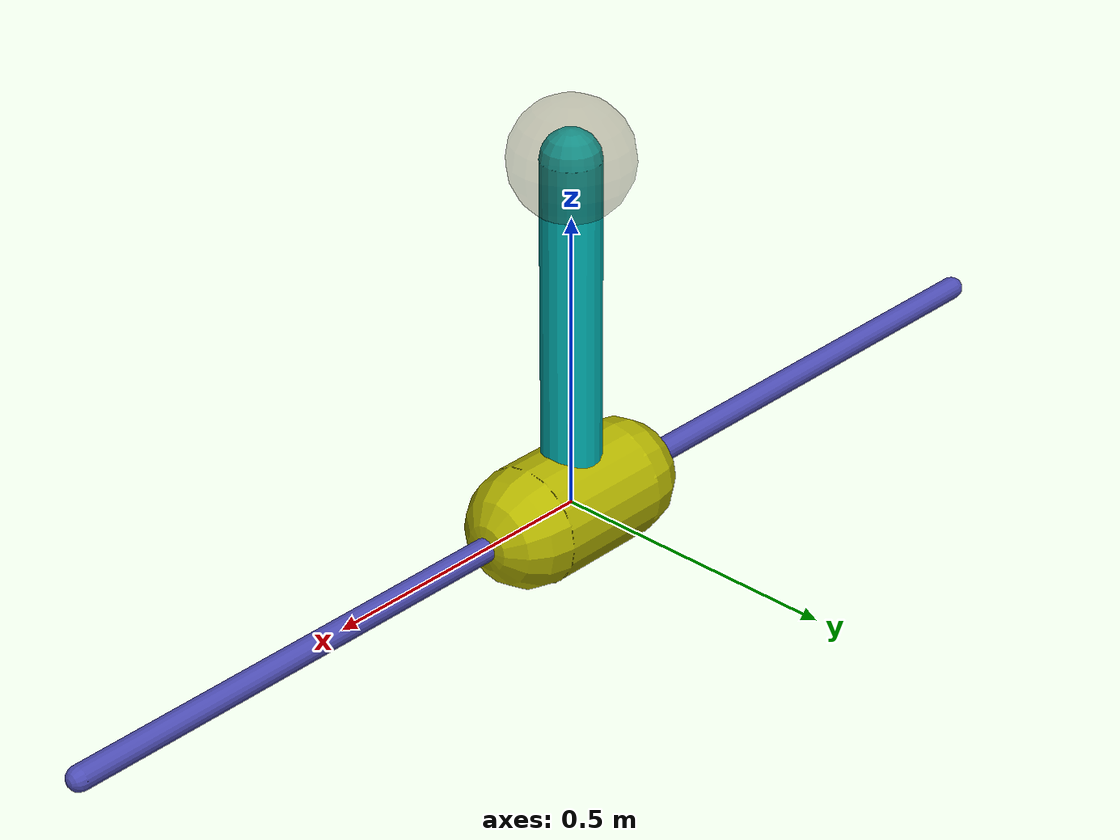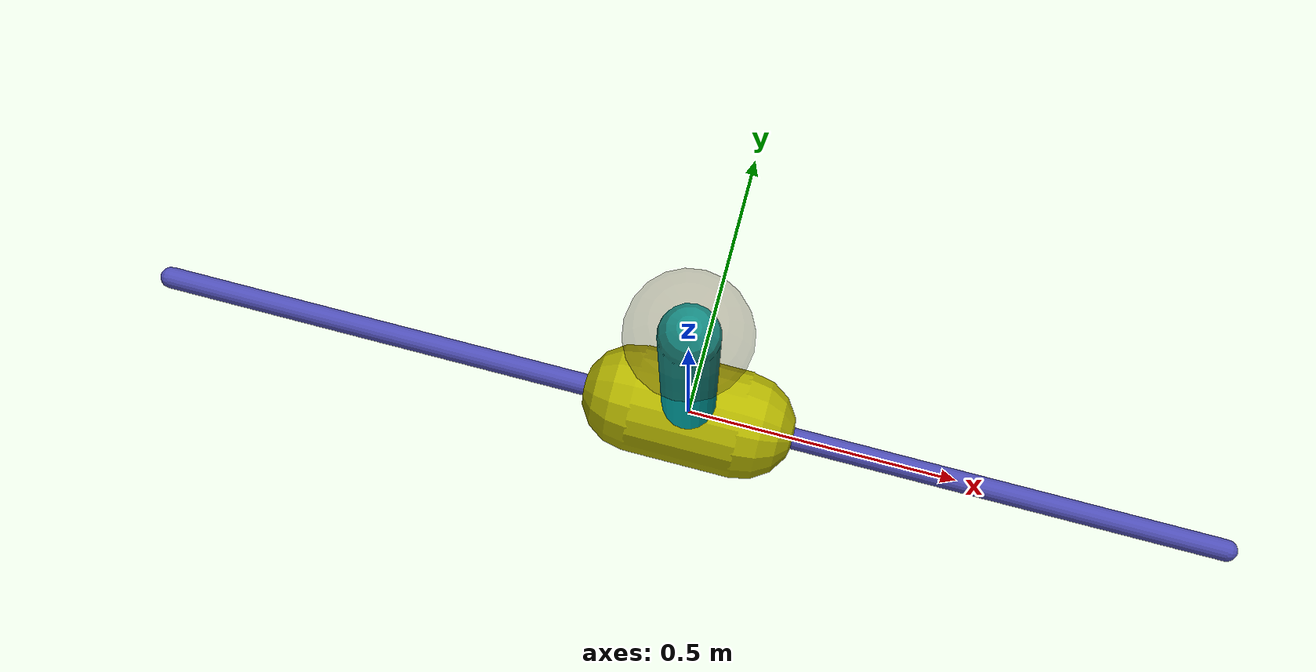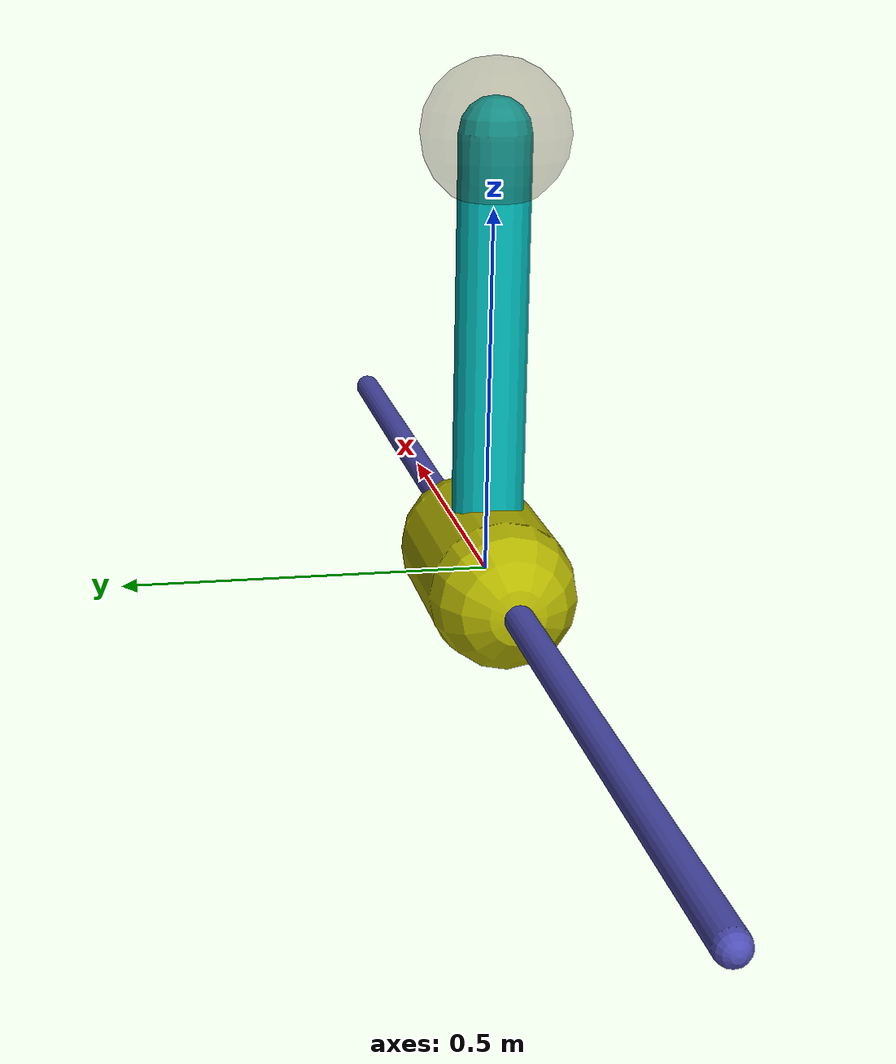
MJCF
<mujoco model="inverted pendulum">
	<compiler inertiafromgeom="true"/>
	<default>
		<joint armature="0" damping="1" limited="true"/>
		<geom contype="0" friction="1 0.1 0.1" rgba="0.7 0.7 0 1"/>
		<tendon/>
		<motor ctrlrange="-1 1"/>
	</default>
	<option gravity="0 0 -9.81" integrator="RK4" timestep="0.02"/>
	<size nstack="3000"/>
	<worldbody>
		<geom name='floor' pos='0 0 0' size='1 1 .125' type='plane' rgba="0.0 0.0 0.0 0.0" condim='3' friction="1 .1 .1"/>
		<geom name="rail" pos="0 0 0" quat="0.707 0 0.707 0" rgba="0.3 0.3 0.7 1" size="0.02 1" type="capsule"/>
		<body name="cart" pos="0 0 0">
			<joint axis="1 0 0" limited="true" name="slider" pos="0 0 0" range="-3 3" type="slide"/>
			<site name="center" pos="0 0 0" size=".1" type="sphere" rgba="0.3 0.2 0.1 0.3"/>
			<geom name="cart" pos="0 0 0" quat="0.707 0 0.707 0" size="0.1 0.1" type="capsule"/>
			<body name="pole" pos="0 0 0">
				<joint axis="0 1 0" name="hinge" pos="0 0 0" limited="false" range="-90 90" type="hinge"/>
				<geom fromto="0 0 0 0.001 0 0.6" name="cpole" rgba="0 0.7 0.7 1" size="0.049 0.3" type="capsule"/>
				<site name="tip" pos="0 0 0.6" size=".1" type="sphere" rgba="0.3 0.2 0.1 0.3"/>
			</body>
		</body>
	</worldbody>
	<actuator>
		<motor gear="100" joint="slider" name="slide"/>
	</actuator>
	<sensor>
		<jointpos name="slider_sens"    	joint="slider" />
		<velocimeter name="speed"		site="center" />
		<jointpos name="rot"  			joint="hinge" />
		<jointvel name="dotrot"  		joint="hinge" />
	</sensor>
</mujoco>
